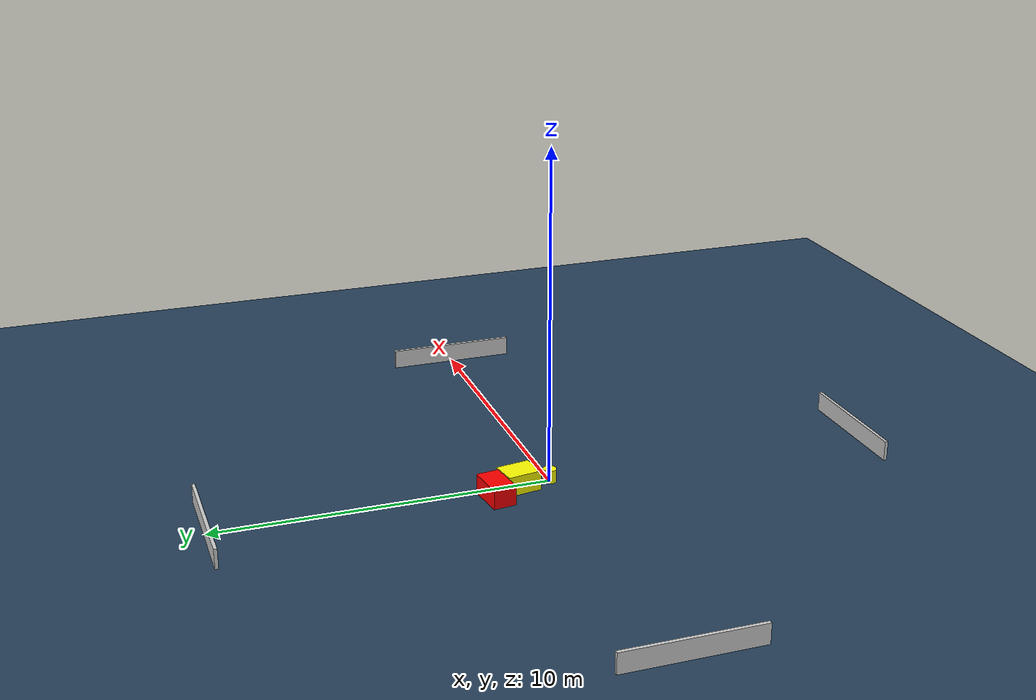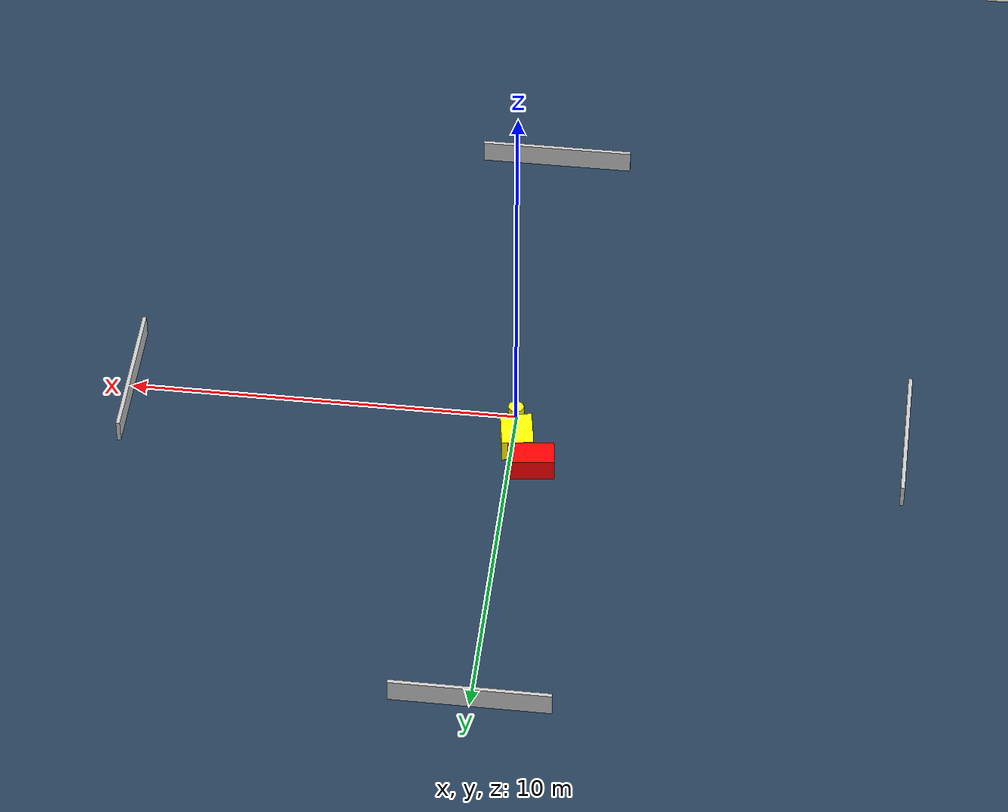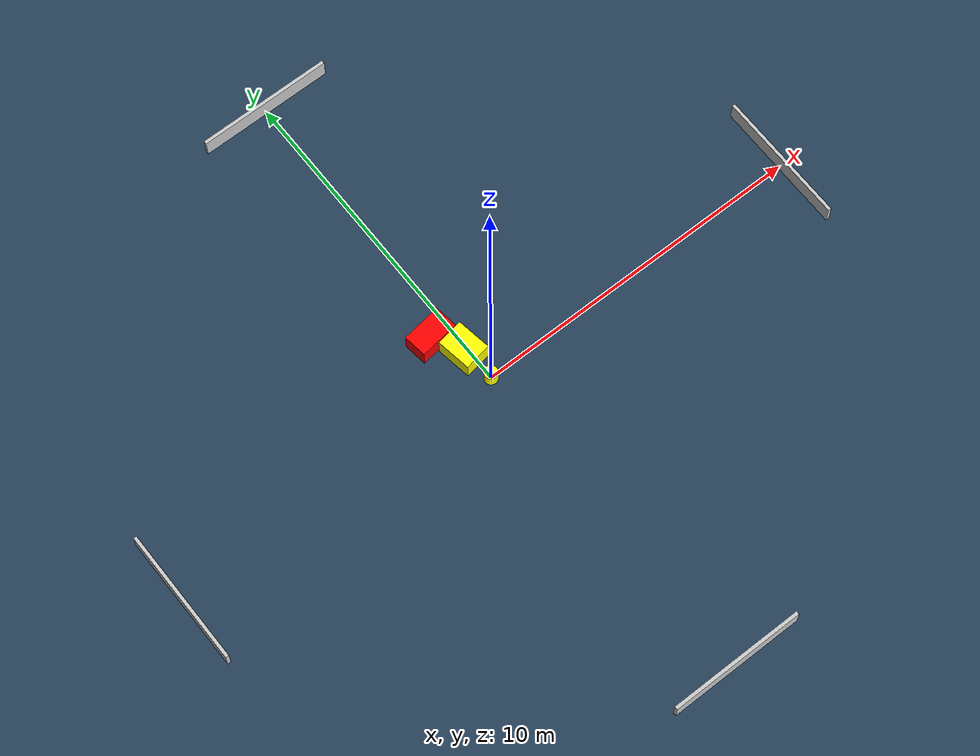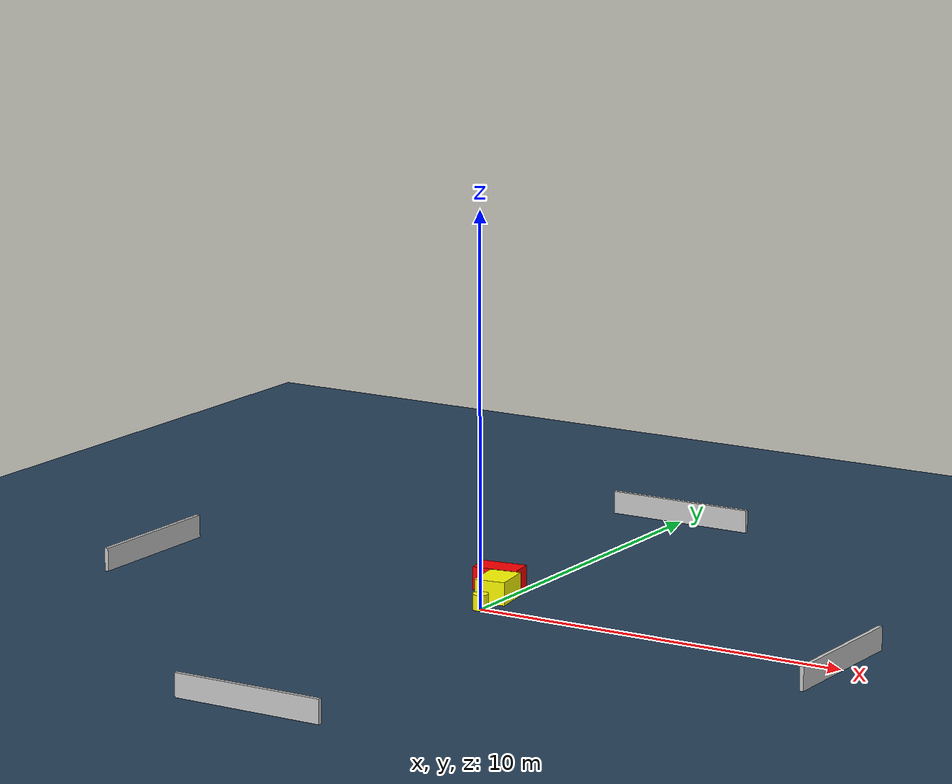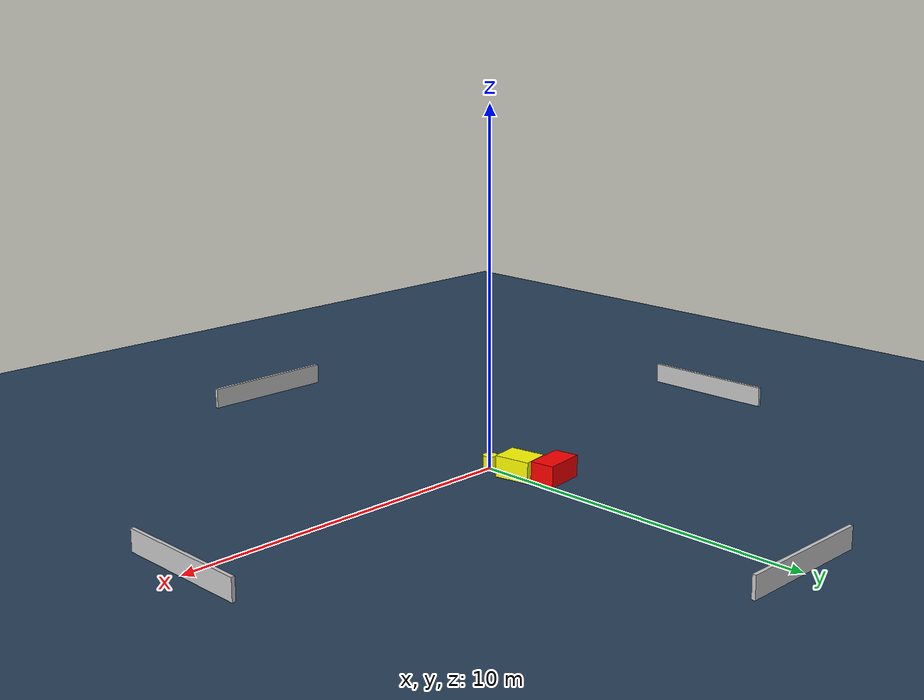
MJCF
<?xml version="1.0" ?>
<mujoco model="generated_environment">
  <option timestep="0.01" integrator="RK4" cone="elliptic"/>
  <default>
    <geom density="1"/>
  </default>
  <asset>
    <texture builtin="gradient" height="3072" name="skybox" rgb1="0.3 0.5 0.7" rgb2="0 0 0" type="skybox" width="512"/>
    <texture builtin="checker" height="300" name="groundplane" rgb1="0.2 0.3 0.4" rgb2="0.1 0.2 0.3" type="2d" width="300"/>
    <material name="groundplane" reflectance="0.2" texrepeat="5 5" texture="groundplane"/>
  </asset>
  <worldbody>
    <light dir="0 0 -1" directional="true" pos="0 0 1.5"/>
    <geom condim="3" friction="0.5 0.005 0.001" material="groundplane" name="floor" pos="0 0 0" size="0 0 0.05" type="plane"/>
    <body name="walls">
      <geom name="wall_1" condim="4" pos="-10.0 0.0 0.3" rgba="0.800000011920929 0.800000011920929 0.800000011920929 1.0" size="0.05 2.0 0.3" type="box"/>
      <geom name="wall_2" condim="4" pos="10.0 0.0 0.3" rgba="0.800000011920929 0.800000011920929 0.800000011920929 1.0" size="0.05 2.0 0.3" type="box"/>
      <geom name="wall_3" condim="4" pos="0.0 -10.0 0.3" rgba="0.800000011920929 0.800000011920929 0.800000011920929 1.0" size="2.0 0.05 0.3" type="box"/>
      <geom name="wall_4" condim="4" pos="0.0 10.0 0.3" rgba="0.800000011920929 0.800000011920929 0.800000011920929 1.0" size="2.0 0.05 0.3" type="box"/>
    </body>
    <body name="robot">
      <joint name="joint_x" type="slide" pos="0 0 0" axis="1 0 0"/>
      <joint name="joint_y" type="slide" pos="0 0 0" axis="0 1 0"/>
      <geom name="robot" type="cylinder" pos="0.0 0.0 0.2" size="0.2 0.2 0.0" mass="5.0" friction="1.0 0.005 0.0001" condim="4" rgba="1.0 1.0 0.0 1.0"/>
    </body>
    <body name="obstacle_1_movable">
      <geom name="obstacle_1_movable" condim="4" pos="-0.1285437610036336 0.9977113225557315 0.3" euler="0 0 189.10687947972662" friction="0.0 0.005 0.001" rgba="1.0 1.0 0.0 1.0" size="0.40400399986825597 0.5187925216569369 0.3" type="box" mass="0.1"/>
      <joint type="free"/>
    </body>
    <body name="obstacle_2_static">
      <geom name="obstacle_2_static" condim="4" pos="-0.585333941829826 1.832353081287955 0.3" euler="0 0 277.49873963183154" friction="0.0 0.005 0.001" rgba="1.0 0.0 0.0 1.0" size="0.34817139177913436 0.5888471019833268 0.3" type="box"/>
    </body>
  </worldbody>
  <actuator>
    <motor name="actuator_x" joint="joint_x" gear="1" ctrlrange="-1 1"/>
    <motor name="actuator_y" joint="joint_y" gear="1" ctrlrange="-1 1"/>
  </actuator>
</mujoco>
